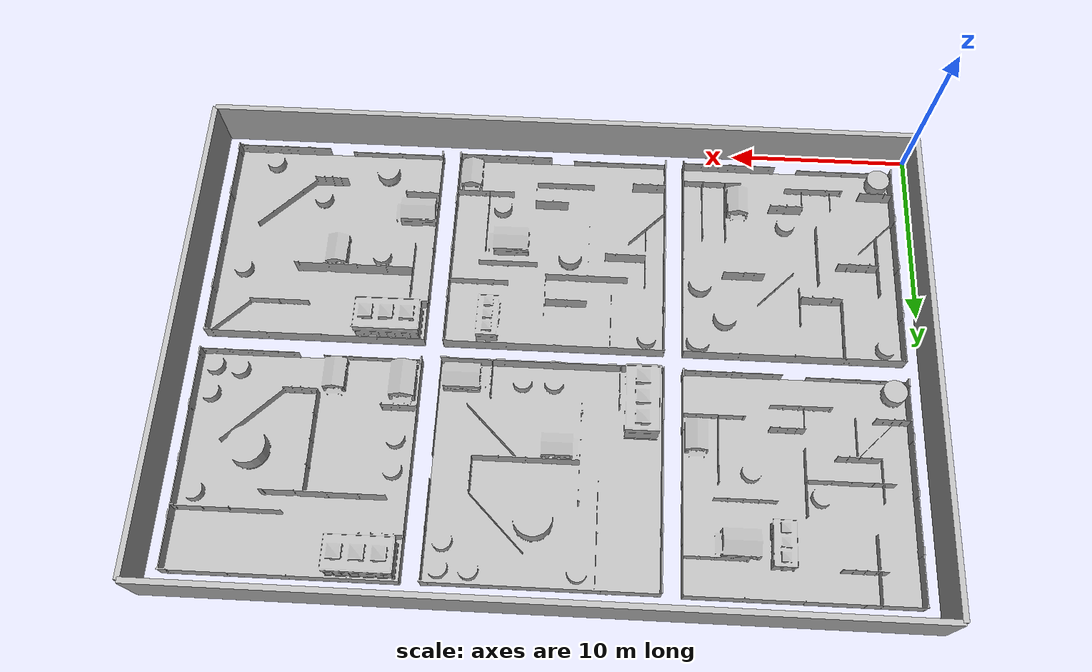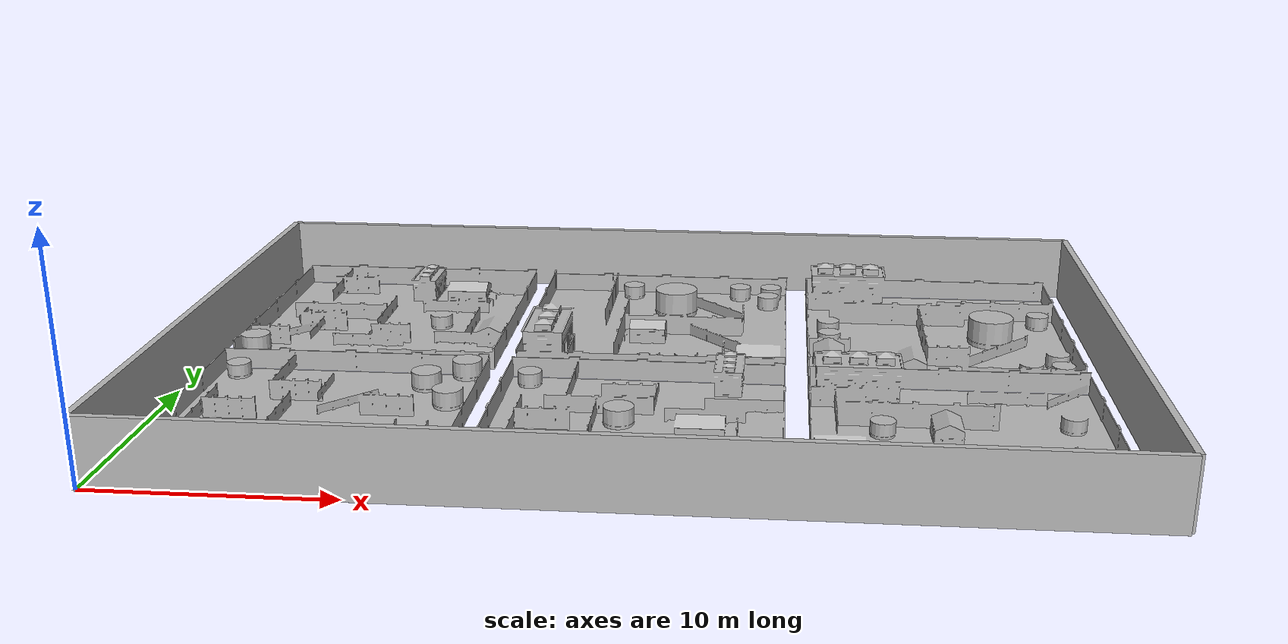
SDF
<?xml version='1.0' encoding='utf-8'?>
<sdf version="1.6">
  <world name="fixed_size_world">
    <include>
      <uri>model://sun</uri>
    </include>

<model name="room6">
  <pose>7 7 0 0 0 1.5707963267948966</pose>
  <static>true</static>
  <link name="body">
    <visual name="visual">
      <geometry>
        <mesh>
          <uri>model://room6/meshes/room_6.dae</uri>
          <scale>0.1 0.1 0.1</scale>
        </mesh>
      </geometry>
    </visual>
    <collision name='collision'>
      <geometry>
        <mesh>
          <uri>model://room6/meshes/room_6.dae</uri>
          <scale>0.1 0.1 0.1</scale>
        </mesh>
      </geometry>
    </collision>
  </link>
</model>

<model name="room5">
  <pose>20 7 0 0 0 1.5707963267948966</pose>
  <static>true</static>
  <link name="body">
    <visual name="visual">
      <geometry>
        <mesh>
          <uri>model://room5/meshes/room_5.dae</uri>
          <scale>0.1 0.1 0.1</scale>
        </mesh>
      </geometry>
    </visual>
    <collision name='collision'>
      <geometry>
        <mesh>
          <uri>model://room5/meshes/room_5.dae</uri>
          <scale>0.1 0.1 0.1</scale>
        </mesh>
      </geometry>
    </collision>
  </link>
</model>

<model name="room3">
  <pose>33 7 0 0 0 1.5707963267948966</pose>
  <static>true</static>
  <link name="body">
    <visual name="visual">
      <geometry>
        <mesh>
          <uri>model://room3/meshes/room_3.dae</uri>
          <scale>0.1 0.1 0.1</scale>
        </mesh>
      </geometry>
    </visual>
    <collision name='collision'>
      <geometry>
        <mesh>
          <uri>model://room3/meshes/room_3.dae</uri>
          <scale>0.1 0.1 0.1</scale>
        </mesh>
      </geometry>
    </collision>
  </link>
</model>

<model name="room4">
  <pose>7 20 0 0 0 1.5707963267948966</pose>
  <static>true</static>
  <link name="body">
    <visual name="visual">
      <geometry>
        <mesh>
          <uri>model://room4/meshes/room_4.dae</uri>
          <scale>0.1 0.1 0.1</scale>
        </mesh>
      </geometry>
    </visual>
    <collision name='collision'>
      <geometry>
        <mesh>
          <uri>model://room4/meshes/room_4.dae</uri>
          <scale>0.1 0.1 0.1</scale>
        </mesh>
      </geometry>
    </collision>
  </link>
</model>

<model name="room2">
  <pose>20 20 0 0 0 3.141592653589793</pose>
  <static>true</static>
  <link name="body">
    <visual name="visual">
      <geometry>
        <mesh>
          <uri>model://room2/meshes/room_2.dae</uri>
          <scale>0.1 0.1 0.1</scale>
        </mesh>
      </geometry>
    </visual>
    <collision name='collision'>
      <geometry>
        <mesh>
          <uri>model://room2/meshes/room_2.dae</uri>
          <scale>0.1 0.1 0.1</scale>
        </mesh>
      </geometry>
    </collision>
  </link>
</model>

<model name="room1">
  <pose>33 20 0 0 0 1.5707963267948966</pose>
  <static>true</static>
  <link name="body">
    <visual name="visual">
      <geometry>
        <mesh>
          <uri>model://room1/meshes/room_1.dae</uri>
          <scale>0.1 0.1 0.1</scale>
        </mesh>
      </geometry>
    </visual>
    <collision name='collision'>
      <geometry>
        <mesh>
          <uri>model://room1/meshes/room_1.dae</uri>
          <scale>0.1 0.1 0.1</scale>
        </mesh>
      </geometry>
    </collision>
  </link>
</model>

<model name="wall_90_0_13.5">
  <static>true</static>
  <link name="wall_link">
    <visual name="wall_visual">
      <geometry>
        <box>
          <size>27 0.3 3</size>
        </box>
      </geometry>
    </visual>
    <collision name="wall_collision">
      <geometry>
        <box>
          <size>27 0.3 3</size>
        </box>
      </geometry>
    </collision>
    <pose>0 13.5 1.5 0 0 1.5707963267948966</pose>
  </link>
</model>

<model name="wall_90_40_13.5">
  <static>true</static>
  <link name="wall_link">
    <visual name="wall_visual">
      <geometry>
        <box>
          <size>27 0.3 3</size>
        </box>
      </geometry>
    </visual>
    <collision name="wall_collision">
      <geometry>
        <box>
          <size>27 0.3 3</size>
        </box>
      </geometry>
    </collision>
    <pose>40 13.5 1.5 0 0 1.5707963267948966</pose>
  </link>
</model>

<model name="wall_0_20.0_0">
  <static>true</static>
  <link name="wall_link">
    <visual name="wall_visual">
      <geometry>
        <box>
          <size>40 0.3 3</size>
        </box>
      </geometry>
    </visual>
    <collision name="wall_collision">
      <geometry>
        <box>
          <size>40 0.3 3</size>
        </box>
      </geometry>
    </collision>
    <pose>20.0 0 1.5 0 0 0.0</pose>
  </link>
</model>

<model name="wall_0_20.0_27">
  <static>true</static>
  <link name="wall_link">
    <visual name="wall_visual">
      <geometry>
        <box>
          <size>40 0.3 3</size>
        </box>
      </geometry>
    </visual>
    <collision name="wall_collision">
      <geometry>
        <box>
          <size>40 0.3 3</size>
        </box>
      </geometry>
    </collision>
    <pose>20.0 27 1.5 0 0 0.0</pose>
  </link>
</model>

  </world>
</sdf>
